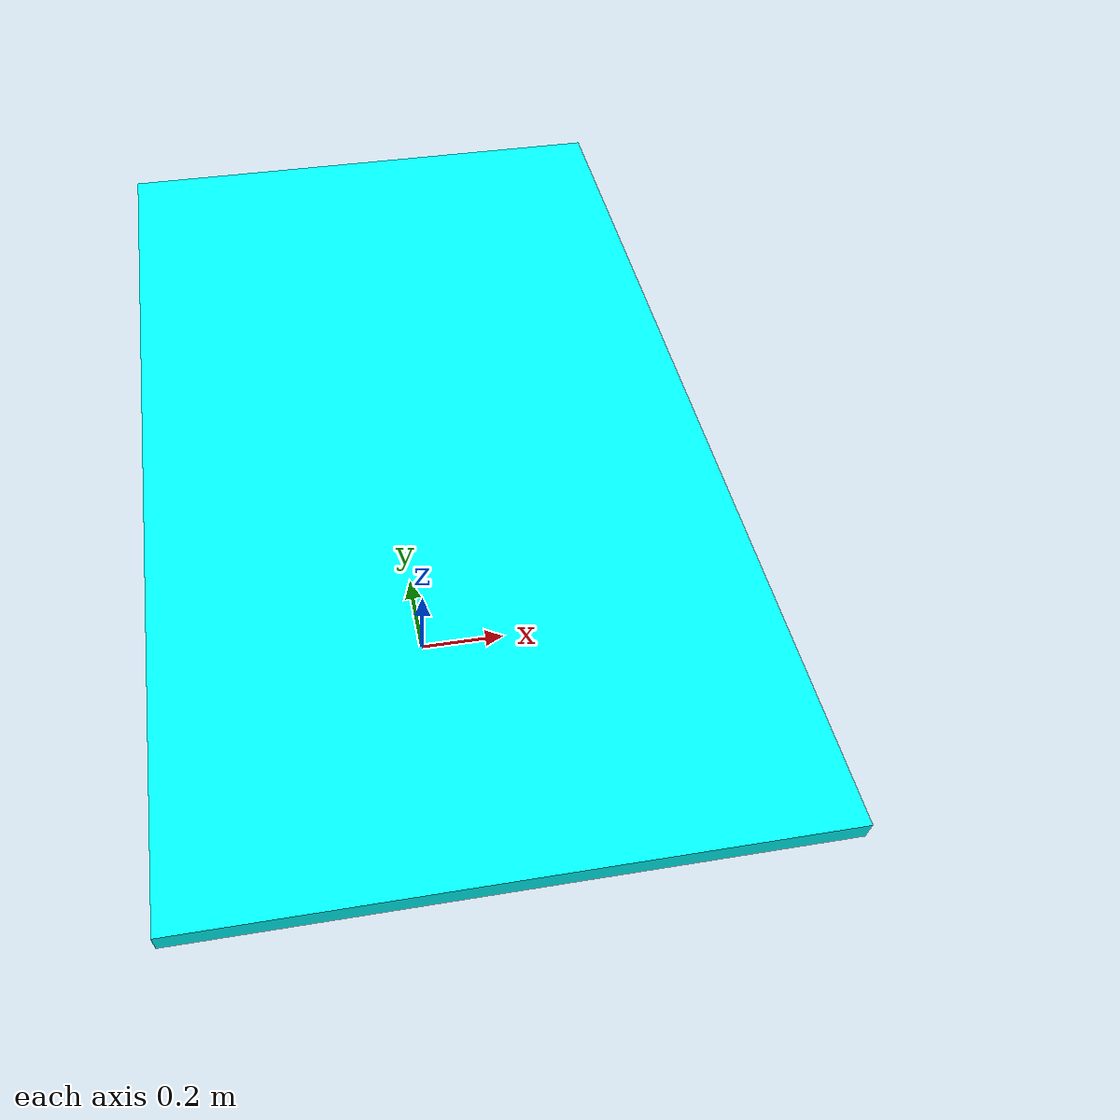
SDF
<?xml version='1.0'?>
<sdf version='1.6'>
  <model name='kitchen_station_table'>
    <link name='link'>
      <inertial>
        <mass>150</mass>
        <inertia>
          <ixx>0</ixx>
          <ixy>0</ixy>
          <ixz>0</ixz>
          <iyy>0</iyy>
          <iyz>0</iyz>
          <izz>1</izz>
        </inertia>
        <pose frame=''>0 0 0 0 -0 0</pose>
      </inertial>
      <self_collide>0</self_collide>
      <enable_wind>0</enable_wind>
      <kinematic>0</kinematic>
      <pose frame=''>0 0 0 0 -0 0</pose>
      <gravity>1</gravity>
      <visual name='visual'>
        <pose frame=''>0.0 0.0 0 0 -0 0</pose>
        <geometry>
          <mesh>
            <uri>/home/maru/catkin_ws/src/robotics_labs/models/kitchen_station_table/meshes/booth_table_mm.dae</uri>
          </mesh>
        </geometry>
        <transparency>0</transparency>
        <cast_shadows>1</cast_shadows>
      </visual>
      <collision name='collision'>
        <laser_retro>0</laser_retro>
        <max_contacts>10</max_contacts>
        <pose frame=''>0.0 0.0 0 0 -0 0</pose>
        <geometry>
          <mesh>
            <uri>/home/maru/catkin_ws/src/robotics_labs/models/kitchen_station_table/meshes/booth_table_mm.dae</uri>
            <scale>1 1 1</scale>
          </mesh>
        </geometry>
        <surface>
          <friction>
            <ode>
              <mu>1</mu>
              <mu2>1</mu2>
              <fdir1>0 0 0</fdir1>
              <slip1>0</slip1>
              <slip2>0</slip2>
            </ode>
            <torsional>
              <coefficient>1</coefficient>
              <patch_radius>0</patch_radius>
              <surface_radius>0</surface_radius>
              <use_patch_radius>1</use_patch_radius>
              <ode>
                <slip>0</slip>
              </ode>
            </torsional>
          </friction>
          <bounce>
            <restitution_coefficient>0</restitution_coefficient>
            <threshold>1e+06</threshold>
          </bounce>
          <contact>
            <collide_without_contact>0</collide_without_contact>
            <collide_without_contact_bitmask>1</collide_without_contact_bitmask>
            <collide_bitmask>1</collide_bitmask>
            <ode>
              <soft_cfm>0</soft_cfm>
              <soft_erp>0.2</soft_erp>
              <kp>1e+13</kp>
              <kd>1</kd>
              <max_vel>0.01</max_vel>
              <min_depth>0</min_depth>
            </ode>
            <bullet>
              <split_impulse>1</split_impulse>
              <split_impulse_penetration_threshold>-0.01</split_impulse_penetration_threshold>
              <soft_cfm>0</soft_cfm>
              <soft_erp>0.2</soft_erp>
              <kp>1e+13</kp>
              <kd>1</kd>
            </bullet>
          </contact>
        </surface>
      </collision>
    </link>
    <static>1</static>
    <allow_auto_disable>1</allow_auto_disable>
  </model>
</sdf>
